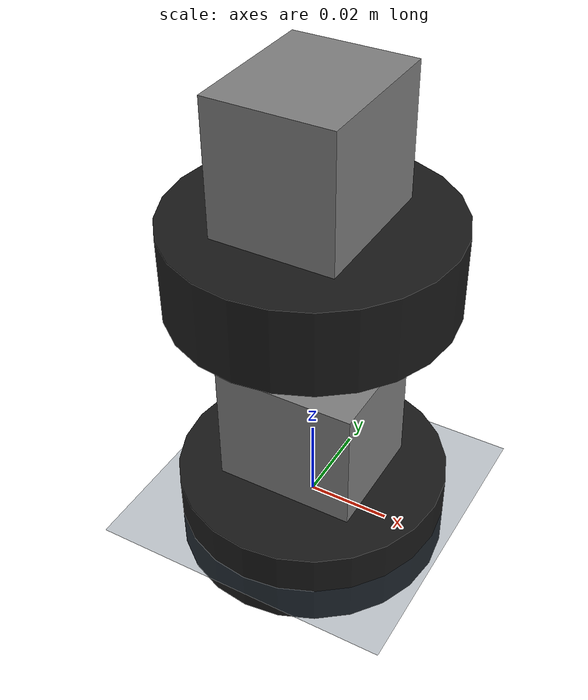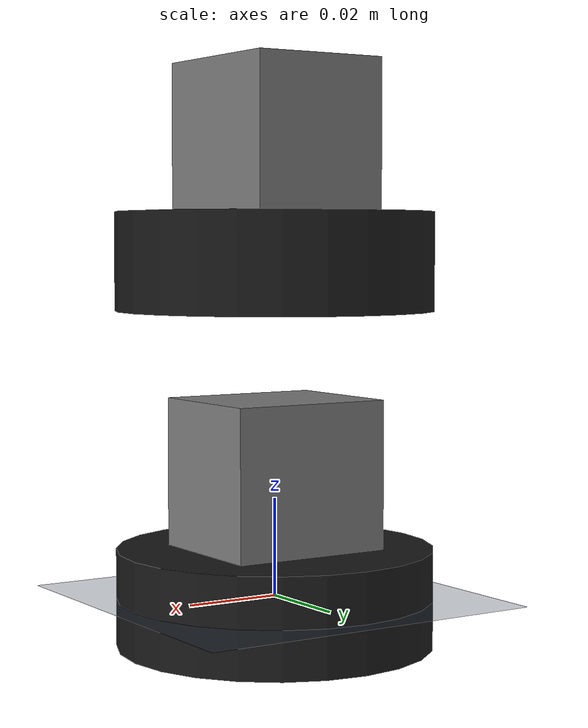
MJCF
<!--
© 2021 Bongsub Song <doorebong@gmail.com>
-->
<!-- All right reserved -->
 <!-- Description : BRM snake robot Mujoco simulation xml -->

<mujoco model="2link-test">

    <compiler inertiafromgeom="true" angle="degree" convexhull="false"/>

    <option timestep="0.01" iterations="50" tolerance="1e-10" solver="Newton" jacobian="dense" cone="pyramidal"/>

     <size nconmax="500" njmax="2000" nstack="10000"/>

    <visual>
        <map force="0.1" zfar="30"/>
        <rgba haze="0.15 0.25 0.35 1"/>
        <quality shadowsize="2048"/>
        <global offwidth="800" offheight="800"/>
    </visual>

    <asset>
        <texture type="skybox" builtin="gradient" rgb1="0.3 0.5 0.7" rgb2="0 0 0" width="512" height="512"/>

        <texture name="texplane" type="2d" builtin="checker" rgb1=".2 .3 .4" rgb2=".1 0.15 0.2" width="512" height="512" mark="cross" markrgb=".8 .8 .8"/>

        <texture name="texgeom" type="cube" builtin="flat" mark="cross" width="127" height="1278"
            rgb1="0.8 0.6 0.4" rgb2="0.8 0.6 0.4" markrgb="1 1 1" random="0.01"/>

        <material name="matplane" reflectance="0.3" texture="texplane" texrepeat="1 1" texuniform="true"/>

        <material name="matgeom" texture="texgeom" texuniform="true" rgba="0.8 0.6 .4 1"/>

        <!-- Pipe Meshes -->
        <mesh name="pipe100" file="./asset/Pipe-100mm-3T_low.stl"/>
    </asset>

    <worldbody>

        <geom name="floor" pos="0 0 0" size="0 0 .25" type="plane" material="matplane" condim="3" />

        <light directional="false" diffuse=".2 .2 .2" specular="0 0 0" pos="0 0 5" dir="0 0 -1" castshadow="false"/>

    <!-- Snake -->
        <body name="base" pos="0 0 0">
            <geom type="cylinder" size="0.0325 0.01" rgba="0.1 0.1 0.1 1" mass="0.04"/>
            <geom type="box" size="0.017 0.01425 0.02525" pos="0 0 0.01525" mass="0.1"/>

            <body name="link1" pos="0 0 0.0685">
                <joint name="joint1" type="hinge" pos="0 0 -0.02925" axis="0 1 0" limited="true" range="-90 90" damping="1" stiffness="0" armature="0.05" />
                <geom type="cylinder" size="0.0325 0.01" rgba="0.1 0.1 0.1 1" mass="0.04"/>
                <geom type="box" size="0.01425 0.017 0.02525" pos="0 0 0.01525" mass="0.1"/>
            </body>
        </body>
    </worldbody>

    <actuator>
        <position name="servo_1" ctrllimited="true" ctrlrange="-1.5708 1.5708" forcelimited="true" forcerange="-3 3" gear="1" joint="joint1" kp="3.77"/>
    </actuator>
</mujoco>
